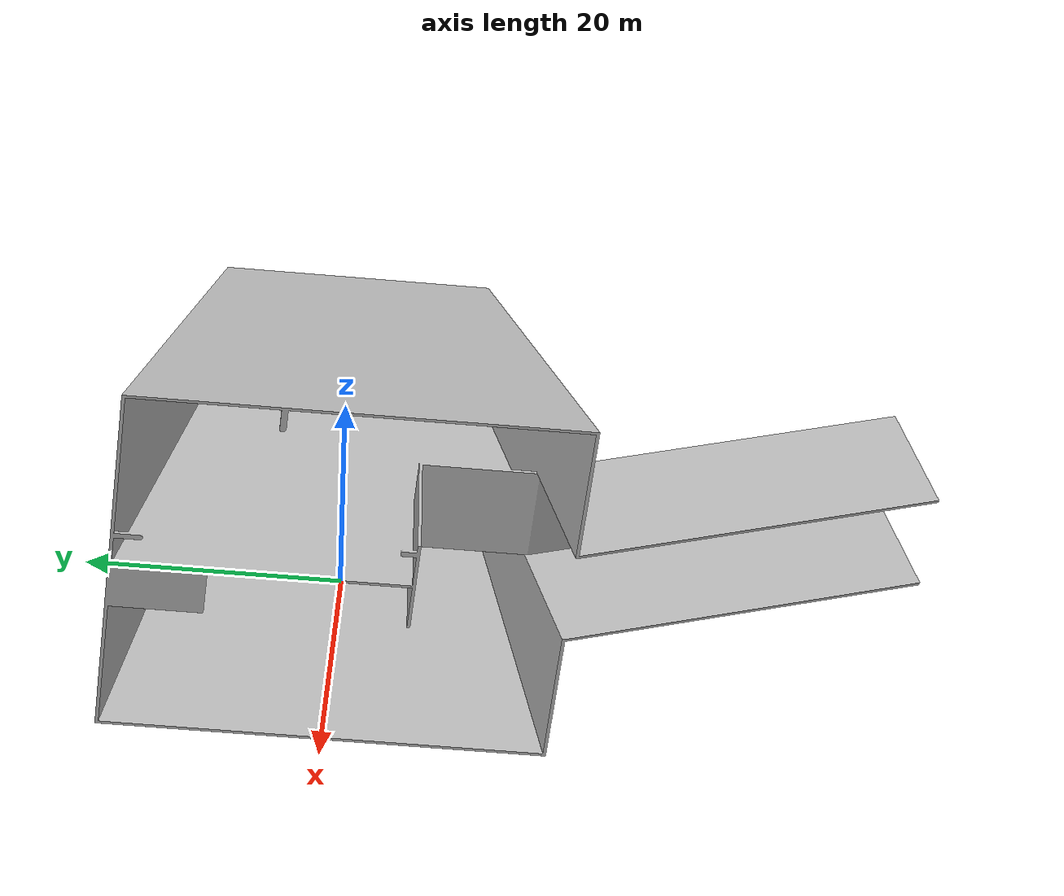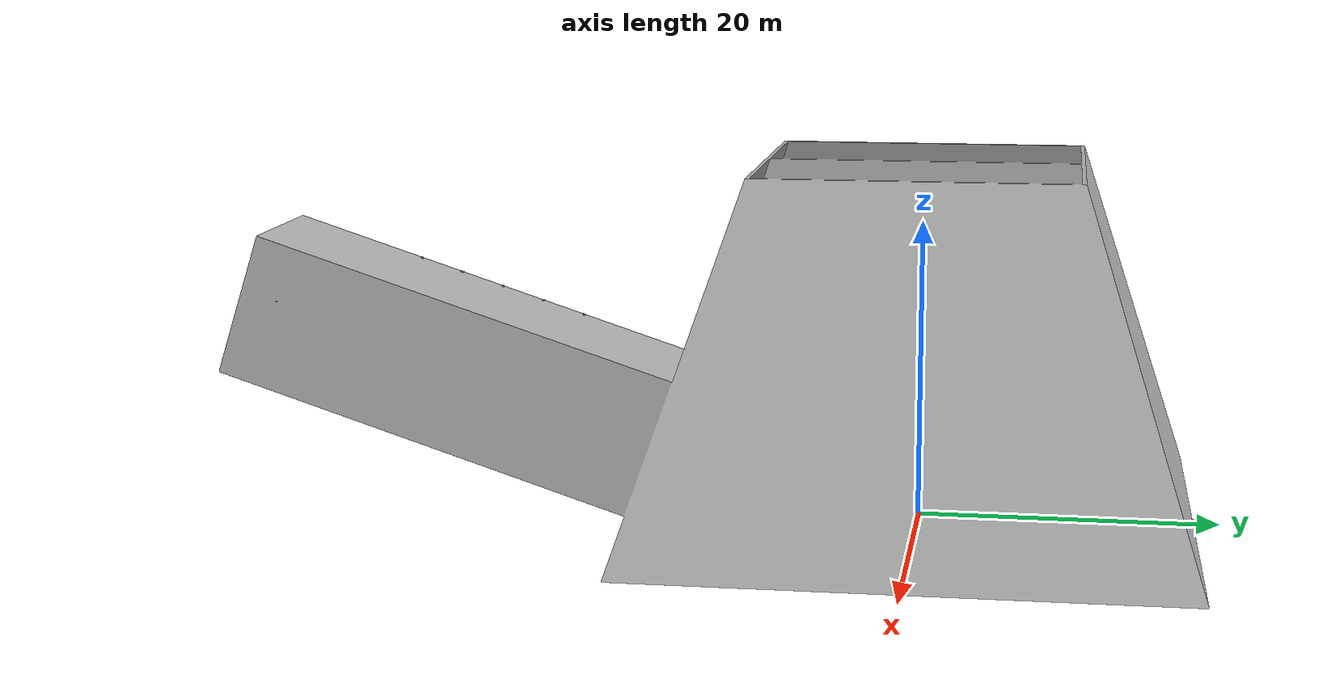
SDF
<sdf version="1.6">
  <model name="ruin">
    <link name="link">
    <visual name='visual'>
      <geometry>
        <mesh>
          <uri>model://ruin/meshes/ruin.stl</uri>
	  <scale>0.01 0.01 0.01</scale>
        </mesh>
      </geometry>
    </visual>

    <collision name='collision'>
      <geometry>
        <mesh>
          <uri>model://ruin/meshes/ruin.stl</uri>
	        <scale>0.01 0.01 0.01</scale>
        </mesh>
      </geometry>
    </collision>

    </link>
  </model>
</sdf>
